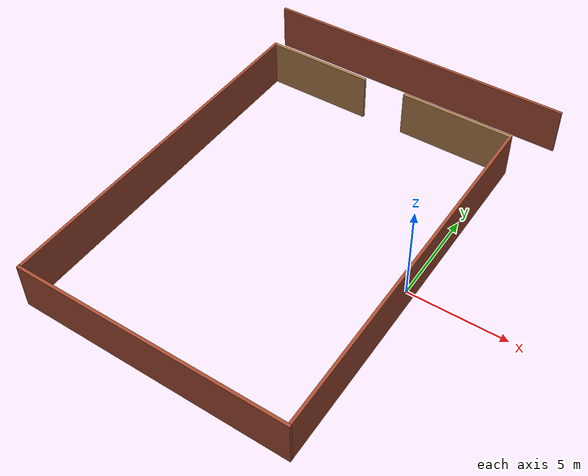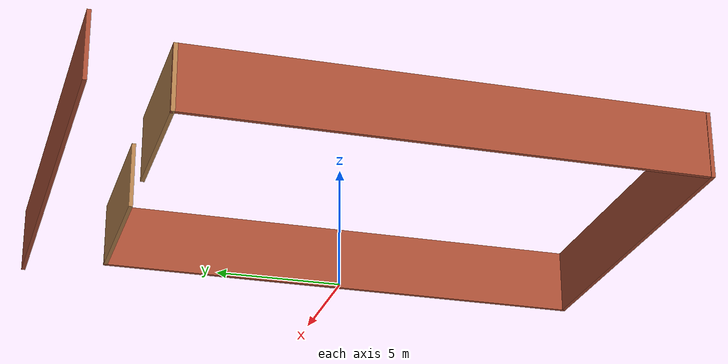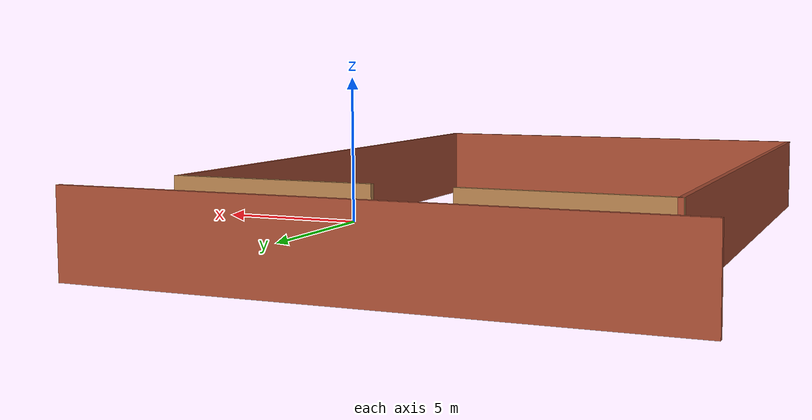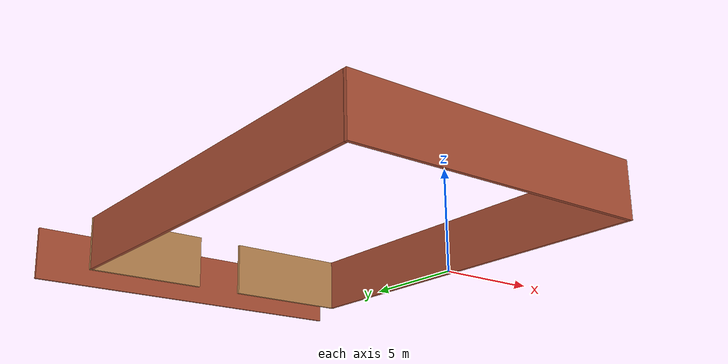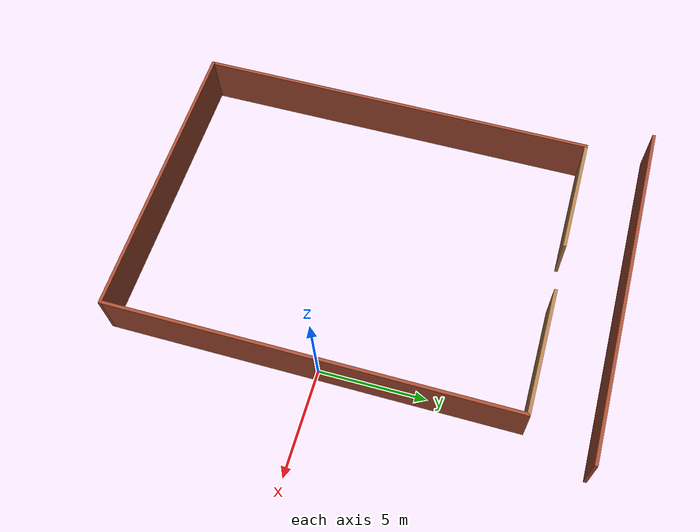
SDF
<?xml version='1.0'?>
<sdf version='1.6'>
  <model name='open_hall2'>
    <pose frame=''>-6.64514 1.32245 0 0 -0 0</pose>
    <link name='Wall_0'>
      <collision name='Wall_0_Collision'>
        <geometry>
          <box>
            <size>19 0.15 2.5</size>
          </box>
        </geometry>
        <pose frame=''>0 0 1.25 0 -0 0</pose>
      </collision>
      <visual name='Wall_0_Visual'>
        <pose frame=''>0 0 1.25 0 -0 0</pose>
        <geometry>
          <box>
            <size>19 0.15 2.5</size>
          </box>
        </geometry>
        <material>
          <script>
            <uri>file://media/materials/scripts/gazebo.material</uri>
            <name>Gazebo/Bricks</name>
          </script>
          <ambient>1 1 1 1</ambient>
        </material>
        <meta>
          <layer>0</layer>
        </meta>
      </visual>
      <pose frame=''>-6.8756 -1.43863 0 0 -0 -1.5708</pose>
    </link>
    <link name='Wall_10'>
      <collision name='Wall_10_Collision'>
        <geometry>
          <box>
            <size>14 0.15 2.5</size>
          </box>
        </geometry>
        <pose frame=''>0 0 1.25 0 -0 0</pose>
      </collision>
      <visual name='Wall_10_Visual'>
        <pose frame=''>0 0 1.25 0 -0 0</pose>
        <geometry>
          <box>
            <size>14 0.15 2.5</size>
          </box>
        </geometry>
        <material>
          <script>
            <uri>file://media/materials/scripts/gazebo.material</uri>
            <name>Gazebo/Bricks</name>
          </script>
          <ambient>1 1 1 1</ambient>
        </material>
        <meta>
          <layer>0</layer>
        </meta>
      </visual>
      <pose frame=''>0.053627 -11.0312 0 0 -0 3.14159</pose>
    </link>
    <link name='Wall_12'>
      <collision name='Wall_12_Collision'>
        <geometry>
          <box>
            <size>16.75 0.15 2.5</size>
          </box>
        </geometry>
        <pose frame=''>0 0 1.25 0 -0 0</pose>
      </collision>
      <visual name='Wall_12_Visual'>
        <pose frame=''>0 0 1.25 0 -0 0</pose>
        <geometry>
          <box>
            <size>16.75 0.15 2.5</size>
          </box>
        </geometry>
        <material>
          <script>
            <uri>file://media/materials/scripts/gazebo.material</uri>
            <name>Gazebo/Bricks</name>
          </script>
          <ambient>1 1 1 1</ambient>
        </material>
        <meta>
          <layer>0</layer>
        </meta>
      </visual>
      <pose frame=''>0 11.0312 0 0 -0 0</pose>
    </link>
    <link name='Wall_2'>
      <collision name='Wall_2_Collision'>
        <geometry>
          <box>
            <size>19.1513 0.15 2.5</size>
          </box>
        </geometry>
        <pose frame=''>0 0 1.25 0 -0 0</pose>
      </collision>
      <visual name='Wall_2_Visual'>
        <pose frame=''>0 0 1.25 0 -0 0</pose>
        <geometry>
          <box>
            <size>19.1513 0.15 2.5</size>
          </box>
        </geometry>
        <material>
          <script>
            <uri>file://media/materials/scripts/gazebo.material</uri>
            <name>Gazebo/Bricks</name>
          </script>
          <ambient>1 1 1 1</ambient>
        </material>
        <meta>
          <layer>0</layer>
        </meta>
      </visual>
      <pose frame=''>6.97863 -1.48396 0 0 -0 -1.5708</pose>
    </link>
    <link name='Wall_5'>
      <collision name='Wall_5_Collision'>
        <geometry>
          <box>
            <size>5.75 0.15 2.5</size>
          </box>
        </geometry>
        <pose frame=''>0 0 1.25 0 -0 0</pose>
      </collision>
      <visual name='Wall_5_Visual'>
        <pose frame=''>0 0 1.25 0 -0 0</pose>
        <geometry>
          <box>
            <size>5.75 0.15 2.5</size>
          </box>
        </geometry>
        <material>
          <script>
            <uri>file://media/materials/scripts/gazebo.material</uri>
            <name>Gazebo/Wood</name>
          </script>
          <ambient>1 1 1 1</ambient>
        </material>
        <meta>
          <layer>0</layer>
        </meta>
      </visual>
      <pose frame=''>-4.0756 7.98637 0 0 -0 0</pose>
    </link>
    <link name='Wall_7'>
      <collision name='Wall_7_Collision'>
        <geometry>
          <box>
            <size>6 0.15 2.5</size>
          </box>
        </geometry>
        <pose frame=''>0 0 1.25 0 -0 0</pose>
      </collision>
      <visual name='Wall_7_Visual'>
        <pose frame=''>0 0 1.25 0 -0 0</pose>
        <geometry>
          <box>
            <size>6 0.15 2.5</size>
          </box>
        </geometry>
        <material>
          <script>
            <uri>file://media/materials/scripts/gazebo.material</uri>
            <name>Gazebo/Wood</name>
          </script>
          <ambient>1 1 1 1</ambient>
        </material>
        <meta>
          <layer>0</layer>
        </meta>
      </visual>
      <pose frame=''>4.05363 8.0167 0 0 -0 3.14159</pose>
    </link>
    <static>1</static>
  </model>
</sdf>
